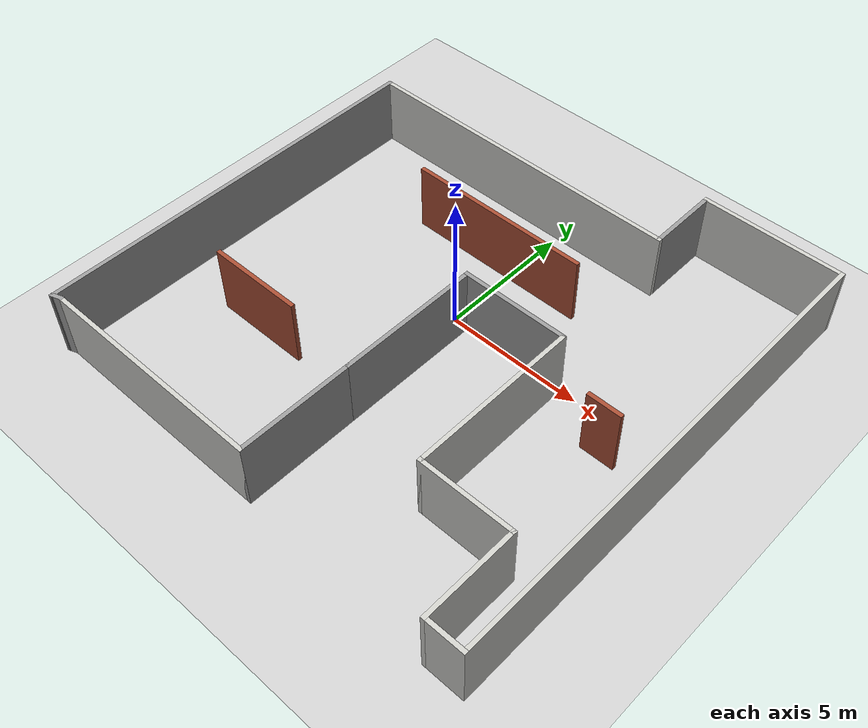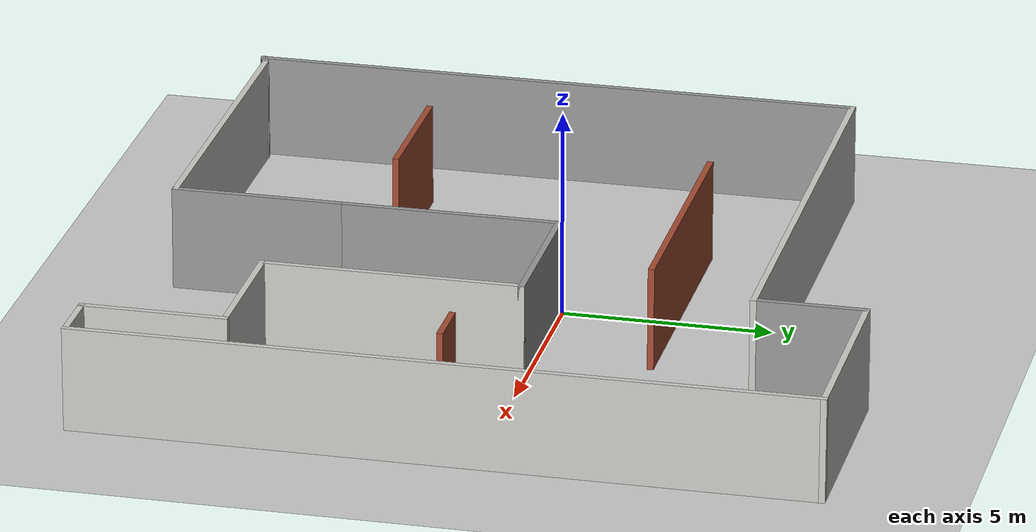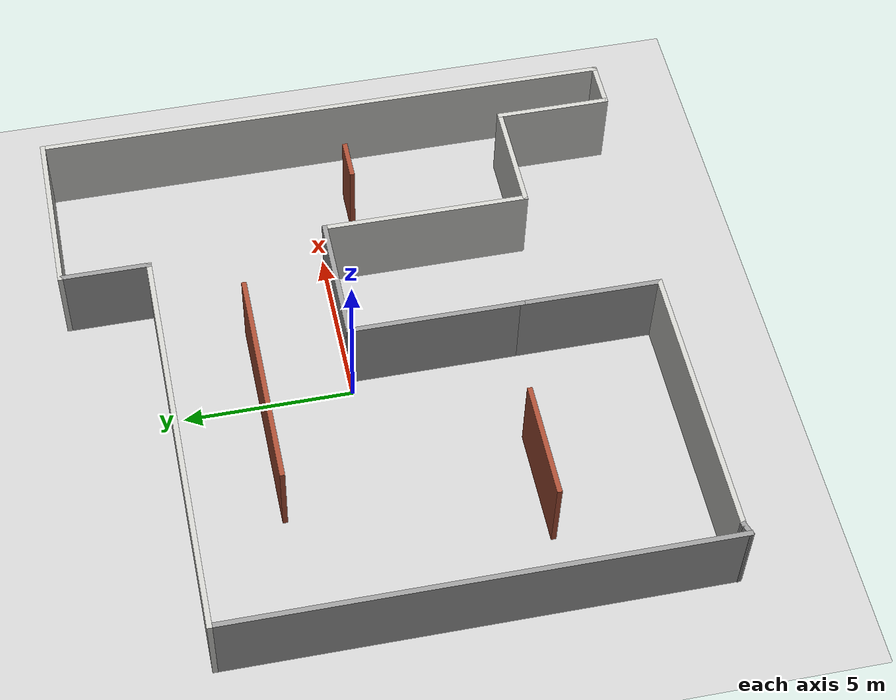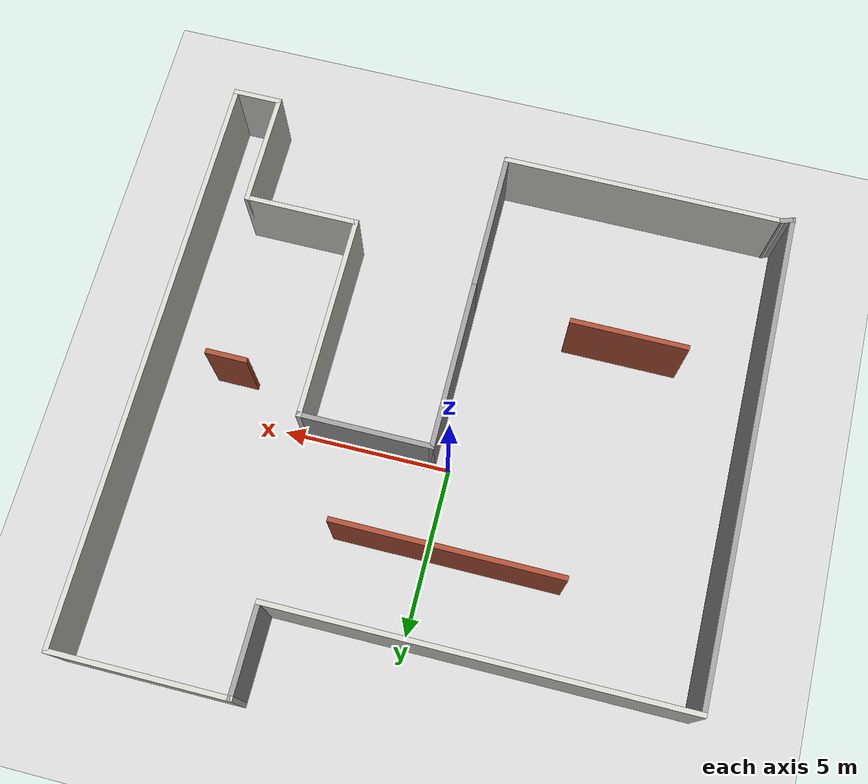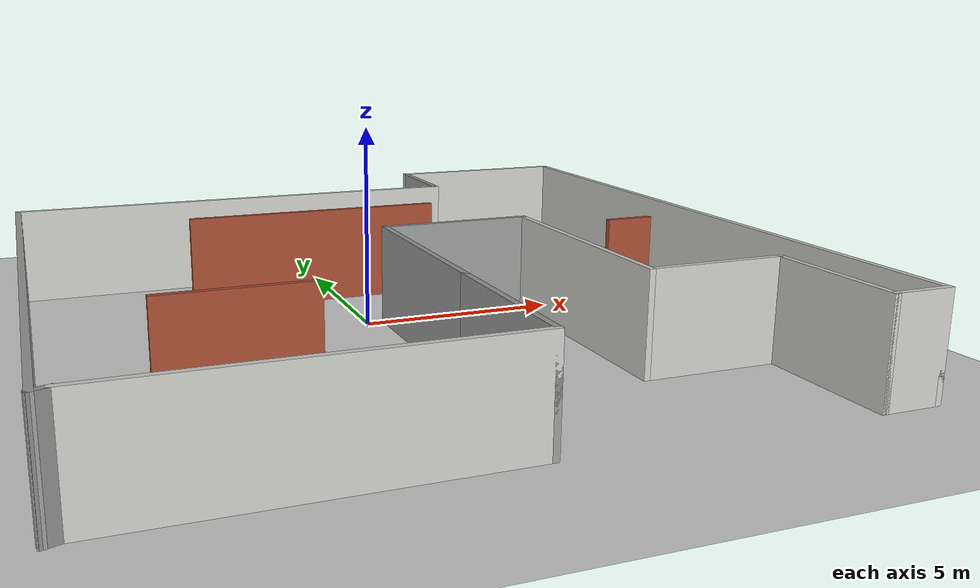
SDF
<sdf version="1.7">
 <world name="default">
  <light name="sun" type="directional">
   <pose>0 0 10 0 -0 0</pose>
   <diffuse>0.8 0.8 0.8 1</diffuse>
   <specular>0.2 0.2 0.2 1</specular>
   <attenuation>
    <range>1000</range>
    <constant>0.9</constant>
    <linear>0.01</linear>
    <quadratic>0.001</quadratic>
   </attenuation>
   <direction>-0.5 0.1 -0.9</direction>
   <spot><inner_angle>0</inner_angle><outer_angle>0</outer_angle><falloff>0</falloff></spot>
  </light>
  <model name="ground_plane">
   <static>1</static>
   <link name="link">
    <collision name="collision">
     <geometry><plane><normal>0 0 1</normal><size>100 100</size></plane></geometry>
     <surface>
      <contact><collide_bitmask>65535</collide_bitmask></contact>
      <friction><ode><mu>100</mu><mu2>50</mu2></ode></friction>
     </surface>
    </collision>
    <visual name="visual">
     <cast_shadows>0</cast_shadows>
     <geometry><plane><normal>0 0 1</normal><size>100 100</size></plane></geometry>
     <material>
      <script><uri>file://media/materials/scripts/gazebo.material</uri><name>Gazebo/Grey</name></script>
     </material>
    </visual>
   </link>
  </model>
  <gravity>0 0 -9.8</gravity>
  <magnetic_field>6e-06 2.3e-05 -4.2e-05</magnetic_field>
  <atmosphere type="adiabatic"/>
  <physics type="ode">
   <max_step_size>0.001</max_step_size>
   <real_time_factor>1</real_time_factor>
   <real_time_update_rate>1000</real_time_update_rate>
  </physics>
  <scene><ambient>0.4 0.4 0.4 1</ambient><background>0.7 0.7 0.7 1</background><shadows>1</shadows></scene>
  <spherical_coordinates>
   <surface_model>EARTH_WGS84</surface_model>
   <latitude_deg>0</latitude_deg>
   <longitude_deg>0</longitude_deg>
   <elevation>0</elevation>
   <heading_deg>0</heading_deg>
  </spherical_coordinates>
  <model name="env4">
   <pose>0.424502 -0.762951 0 0 -0 0</pose>
   <link name="Wall_10">
    <collision name="Wall_10_Collision">
     <geometry><box><size>4 0.15 2.5</size></box></geometry>
     <pose>0 0 1.25 0 -0 0</pose>
    </collision>
    <visual name="Wall_10_Visual">
     <pose>0 0 1.25 0 -0 0</pose>
     <geometry><box><size>4 0.15 2.5</size></box></geometry>
     <material>
      <script><uri>file://media/materials/scripts/gazebo.material</uri><name>Gazebo/Grey</name></script>
      <ambient>1 1 1 1</ambient>
     </material>
     <meta><layer>0</layer></meta>
    </visual>
    <pose>1.98493 0.775 0 0 -0 0</pose>
   </link>
   <link name="Wall_11">
    <collision name="Wall_11_Collision">
     <geometry><box><size>6.25 0.15 2.5</size></box></geometry>
     <pose>0 0 1.25 0 -0 0</pose>
    </collision>
    <visual name="Wall_11_Visual">
     <pose>0 0 1.25 0 -0 0</pose>
     <geometry><box><size>6.25 0.15 2.5</size></box></geometry>
     <material>
      <script><uri>file://media/materials/scripts/gazebo.material</uri><name>Gazebo/CeilingTiled</name></script>
      <ambient>1 1 1 1</ambient>
     </material>
     <meta><layer>0</layer></meta>
    </visual>
    <pose>3.90993 -2.275 0 0 -0 -1.5708</pose>
   </link>
   <link name="Wall_12">
    <collision name="Wall_12_Collision">
     <geometry><box><size>3.5 0.15 2.5</size></box></geometry>
     <pose>0 0 1.25 0 -0 0</pose>
    </collision>
    <visual name="Wall_12_Visual">
     <pose>0 0 1.25 0 -0 0</pose>
     <geometry><box><size>3.5 0.15 2.5</size></box></geometry>
     <material>
      <script><uri>file://media/materials/scripts/gazebo.material</uri><name>Gazebo/CeilingTiled</name></script>
      <ambient>1 1 1 1</ambient>
     </material>
     <meta><layer>0</layer></meta>
    </visual>
    <pose>5.58493 -5.325 0 0 -0 0</pose>
   </link>
   <link name="Wall_13">
    <collision name="Wall_13_Collision">
     <geometry><box><size>3.5 0.15 2.5</size></box></geometry>
     <pose>0 0 1.25 0 -0 0</pose>
    </collision>
    <visual name="Wall_13_Visual">
     <pose>0 0 1.25 0 -0 0</pose>
     <geometry><box><size>3.5 0.15 2.5</size></box></geometry>
     <material>
      <script><uri>file://media/materials/scripts/gazebo.material</uri><name>Gazebo/CeilingTiled</name></script>
      <ambient>1 1 1 1</ambient>
     </material>
     <meta><layer>0</layer></meta>
    </visual>
    <pose>7.25993 -7 0 0 -0 -1.5708</pose>
   </link>
   <link name="Wall_14">
    <collision name="Wall_14_Collision">
     <geometry><box><size>1.5 0.15 2.5</size></box></geometry>
     <pose>0 0 1.25 0 -0 0</pose>
    </collision>
    <visual name="Wall_14_Visual">
     <pose>0 0 1.25 0 -0 0</pose>
     <geometry><box><size>1.5 0.15 2.5</size></box></geometry>
     <material>
      <script><uri>file://media/materials/scripts/gazebo.material</uri><name>Gazebo/CeilingTiled</name></script>
      <ambient>1 1 1 1</ambient>
     </material>
     <meta><layer>0</layer></meta>
    </visual>
    <pose>7.93493 -8.675 0 0 -0 0</pose>
   </link>
   <link name="Wall_15">
    <collision name="Wall_15_Collision">
     <geometry><box><size>17.5 0.15 2.5</size></box></geometry>
     <pose>0 0 1.25 0 -0 0</pose>
    </collision>
    <visual name="Wall_15_Visual">
     <pose>0 0 1.25 0 -0 0</pose>
     <geometry><box><size>17.5 0.15 2.5</size></box></geometry>
     <material>
      <script><uri>file://media/materials/scripts/gazebo.material</uri><name>Gazebo/CeilingTiled</name></script>
      <ambient>1 1 1 1</ambient>
     </material>
     <meta><layer>0</layer></meta>
    </visual>
    <pose>8.60993 0 0 0 -0 1.5708</pose>
   </link>
   <link name="Wall_16">
    <collision name="Wall_16_Collision">
     <geometry><box><size>5.25 0.15 2.5</size></box></geometry>
     <pose>0 0 1.25 0 -0 0</pose>
    </collision>
    <visual name="Wall_16_Visual">
     <pose>0 0 1.25 0 -0 0</pose>
     <geometry><box><size>5.25 0.15 2.5</size></box></geometry>
     <material>
      <script><uri>file://media/materials/scripts/gazebo.material</uri><name>Gazebo/CeilingTiled</name></script>
      <ambient>1 1 1 1</ambient>
     </material>
     <meta><layer>0</layer></meta>
    </visual>
    <pose>6.05993 8.675 0 0 -0 3.14159</pose>
   </link>
   <link name="Wall_17">
    <collision name="Wall_17_Collision">
     <geometry><box><size>2.75 0.15 2.5</size></box></geometry>
     <pose>0 0 1.25 0 -0 0</pose>
    </collision>
    <visual name="Wall_17_Visual">
     <pose>0 0 1.25 0 -0 0</pose>
     <geometry><box><size>2.75 0.15 2.5</size></box></geometry>
     <material>
      <script><uri>file://media/materials/scripts/gazebo.material</uri><name>Gazebo/Grey</name></script>
      <ambient>1 1 1 1</ambient>
     </material>
     <meta><layer>0</layer></meta>
    </visual>
    <pose>3.50993 7.375 0 0 -0 -1.5708</pose>
   </link>
   <link name="Wall_18">
    <collision name="Wall_18_Collision">
     <geometry><box><size>12.25 0.15 2.5</size></box></geometry>
     <pose>0 0 1.25 0 -0 0</pose>
    </collision>
    <visual name="Wall_18_Visual">
     <pose>0 0 1.25 0 -0 0</pose>
     <geometry><box><size>12.25 0.15 2.5</size></box></geometry>
     <material>
      <script><uri>file://media/materials/scripts/gazebo.material</uri><name>Gazebo/CeilingTiled</name></script>
      <ambient>1 1 1 1</ambient>
     </material>
     <meta><layer>0</layer></meta>
    </visual>
    <pose>-2.54007 6.075 0 0 -0 3.14159</pose>
   </link>
   <link name="Wall_19">
    <collision name="Wall_19_Collision">
     <geometry><box><size>14.75 0.15 2.5</size></box></geometry>
     <pose>0 0 1.25 0 -0 0</pose>
    </collision>
    <visual name="Wall_19_Visual">
     <pose>0 0 1.25 0 -0 0</pose>
     <geometry><box><size>14.75 0.15 2.5</size></box></geometry>
     <material>
      <script><uri>file://media/materials/scripts/gazebo.material</uri><name>Gazebo/Grey</name></script>
      <ambient>1 1 1 1</ambient>
     </material>
     <meta><layer>0</layer></meta>
    </visual>
    <pose>-8.59007 -1.225 0 0 -0 -1.5708</pose>
   </link>
   <link name="Wall_20">
    <collision name="Wall_20_Collision">
     <geometry><box><size>0.466228 0.15 2.5</size></box></geometry>
     <pose>0 0 1.25 0 -0 0</pose>
    </collision>
    <visual name="Wall_20_Visual">
     <pose>0 0 1.25 0 -0 0</pose>
     <geometry><box><size>0.466228 0.15 2.5</size></box></geometry>
     <material>
      <script><uri>file://media/materials/scripts/gazebo.material</uri><name>Gazebo/Grey</name></script>
      <ambient>1 1 1 1</ambient>
     </material>
     <meta><layer>0</layer></meta>
    </visual>
    <pose>-8.44007 -8.475 0 0 -0 0.321751</pose>
   </link>
   <link name="Wall_7">
    <collision name="Wall_7_Collision">
     <geometry><box><size>8.5 0.15 2.5</size></box></geometry>
     <pose>0 0 1.25 0 -0 0</pose>
    </collision>
    <visual name="Wall_7_Visual">
     <pose>0 0 1.25 0 -0 0</pose>
     <geometry><box><size>8.5 0.15 2.5</size></box></geometry>
     <material>
      <script><uri>file://media/materials/scripts/gazebo.material</uri><name>Gazebo/CeilingTiled</name></script>
      <ambient>1 1 1 1</ambient>
     </material>
     <meta><layer>0</layer></meta>
    </visual>
    <pose>-4.11507 -8.425 0 0 -0 0</pose>
   </link>
   <link name="Wall_8">
    <collision name="Wall_8_Collision">
     <geometry><box><size>4.25 0.15 2.5</size></box></geometry>
     <pose>0 0 1.25 0 -0 0</pose>
    </collision>
    <visual name="Wall_8_Visual">
     <pose>0 0 1.25 0 -0 0</pose>
     <geometry><box><size>4.25 0.15 2.5</size></box></geometry>
     <material>
      <script><uri>file://media/materials/scripts/gazebo.material</uri><name>Gazebo/Grey</name></script>
      <ambient>1 1 1 1</ambient>
     </material>
     <meta><layer>0</layer></meta>
    </visual>
    <pose>0.059934 -6.375 0 0 -0 1.5708</pose>
   </link>
   <link name="Wall_9">
    <collision name="Wall_9_Collision">
     <geometry><box><size>5.25 0.15 2.5</size></box></geometry>
     <pose>0 0 1.25 0 -0 0</pose>
    </collision>
    <visual name="Wall_9_Visual">
     <pose>0 0 1.25 0 -0 0</pose>
     <geometry><box><size>5.25 0.15 2.5</size></box></geometry>
     <material>
      <script><uri>file://media/materials/scripts/gazebo.material</uri><name>Gazebo/Grey</name></script>
      <ambient>1 1 1 1</ambient>
     </material>
     <meta><layer>0</layer></meta>
    </visual>
    <pose>0.059934 -1.775 0 0 -0 1.5708</pose>
   </link>
   <static>1</static>
  </model>
  <model name="Untitled">
   <pose>0.748803 -0.955074 0 0 -0 0</pose>
   <link name="Wall_22">
    <collision name="Wall_22_Collision">
     <geometry><box><size>3.5 0.15 2.5</size></box></geometry>
     <pose>0 0 1.25 0 -0 0</pose>
    </collision>
    <visual name="Wall_22_Visual">
     <pose>0 0 1.25 0 -0 0</pose>
     <geometry><box><size>3.5 0.15 2.5</size></box></geometry>
     <material>
      <script><uri>file://media/materials/scripts/gazebo.material</uri><name>Gazebo/Bricks</name></script>
      <ambient>1 1 1 1</ambient>
     </material>
     <meta><layer>0</layer></meta>
    </visual>
    <pose>-4.94865 -3.64244 0 0 -0 3.14159</pose>
   </link>
   <link name="Wall_29">
    <collision name="Wall_29_Collision">
     <geometry><box><size>1.25 0.15 2.5</size></box></geometry>
     <pose>0 0 1.25 0 -0 0</pose>
    </collision>
    <visual name="Wall_29_Visual">
     <pose>0 0 1.25 0 -0 0</pose>
     <geometry><box><size>1.25 0.15 2.5</size></box></geometry>
     <material>
      <script><uri>file://media/materials/scripts/gazebo.material</uri><name>Gazebo/Bricks</name></script>
      <ambient>1 1 1 1</ambient>
     </material>
     <meta><layer>0</layer></meta>
    </visual>
    <pose>6.07365 -0.211927 0 0 -0 3.14159</pose>
   </link>
   <link name="Wall_32">
    <collision name="Wall_32_Collision">
     <geometry><box><size>6.75 0.15 2.5</size></box></geometry>
     <pose>0 0 1.25 0 -0 0</pose>
    </collision>
    <visual name="Wall_32_Visual">
     <pose>0 0 1.25 0 -0 0</pose>
     <geometry><box><size>6.75 0.15 2.5</size></box></geometry>
     <material>
      <script><uri>file://media/materials/scripts/gazebo.material</uri><name>Gazebo/Bricks</name></script>
      <ambient>1 1 1 1</ambient>
     </material>
     <meta><layer>0</layer></meta>
    </visual>
    <pose>-1.36414 3.64244 0 0 -0 0</pose>
   </link>
   <static>1</static>
  </model>
 </world>
</sdf>
